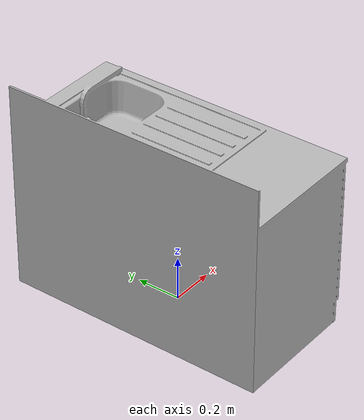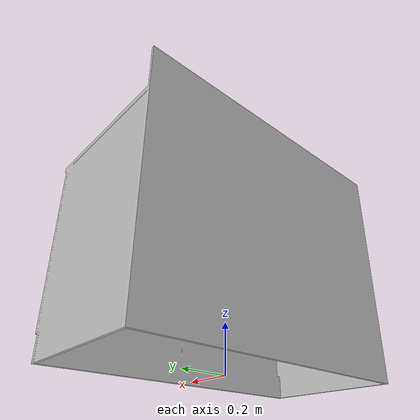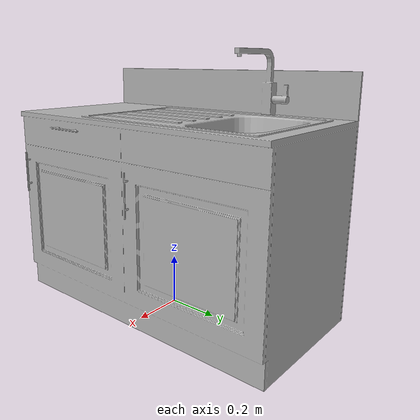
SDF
<?xml version='1.0'?>
<sdf version='1.4'>
  <model name='670'>
    <pose>0 0 0 0 0 0</pose>
    <static>true</static>
    <link name='link'>
      <collision name='collision'>
        <pose>0 0 0 0 0 0</pose>
        <geometry>
          <box>
            <size>0.610464 1.2 2</size>
          </box>
        </geometry>
      </collision>
      <visual name='visual'>
        <pose>0 0 0 0 0 0</pose>
        <geometry>
          <mesh><uri>model://670/670.dae</uri></mesh>
        </geometry>
      </visual>
    </link>
  </model>
</sdf>
